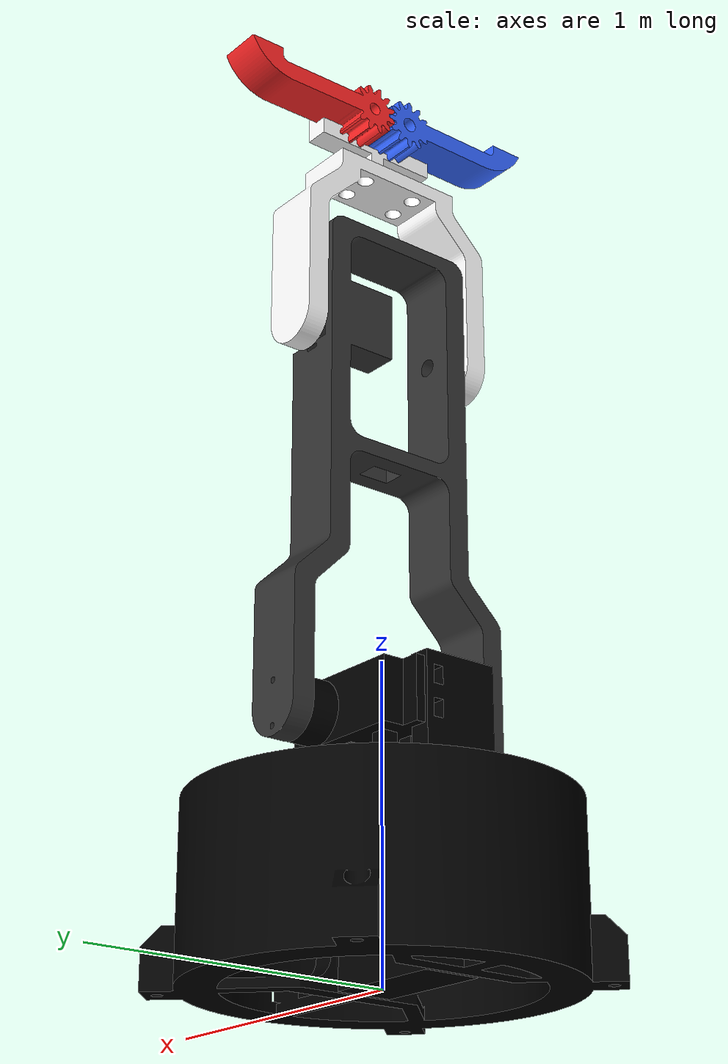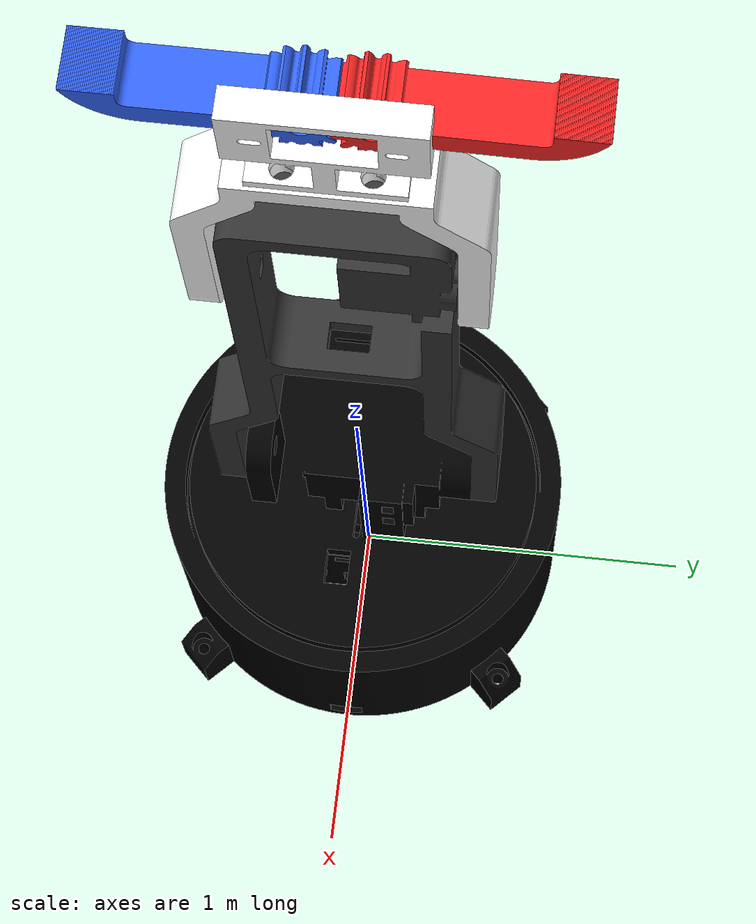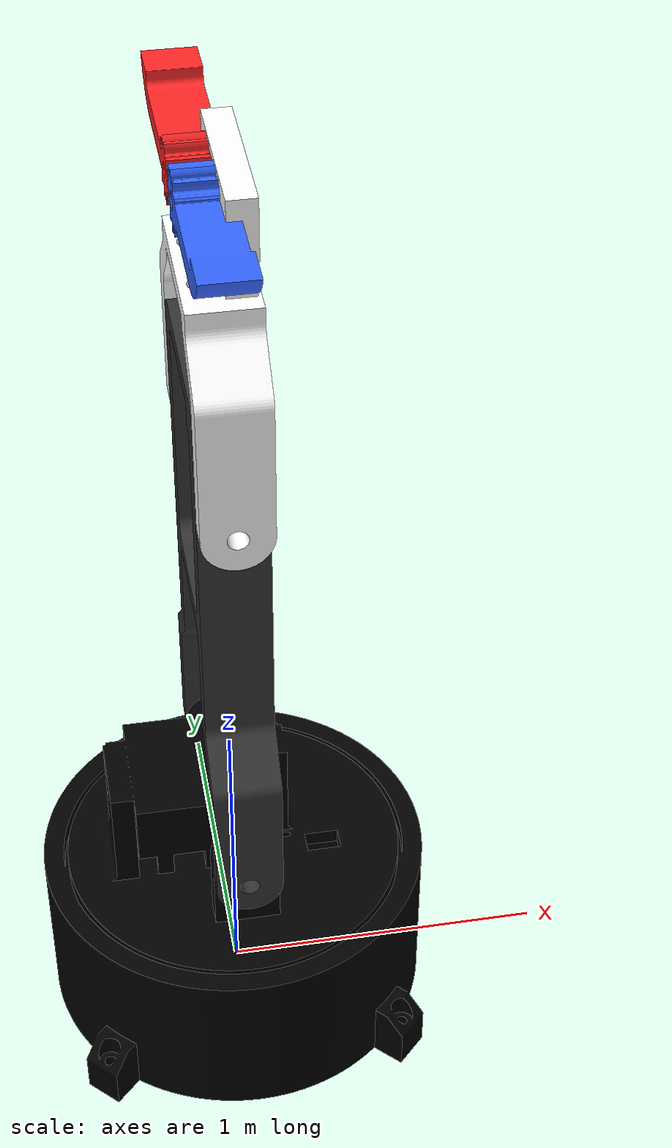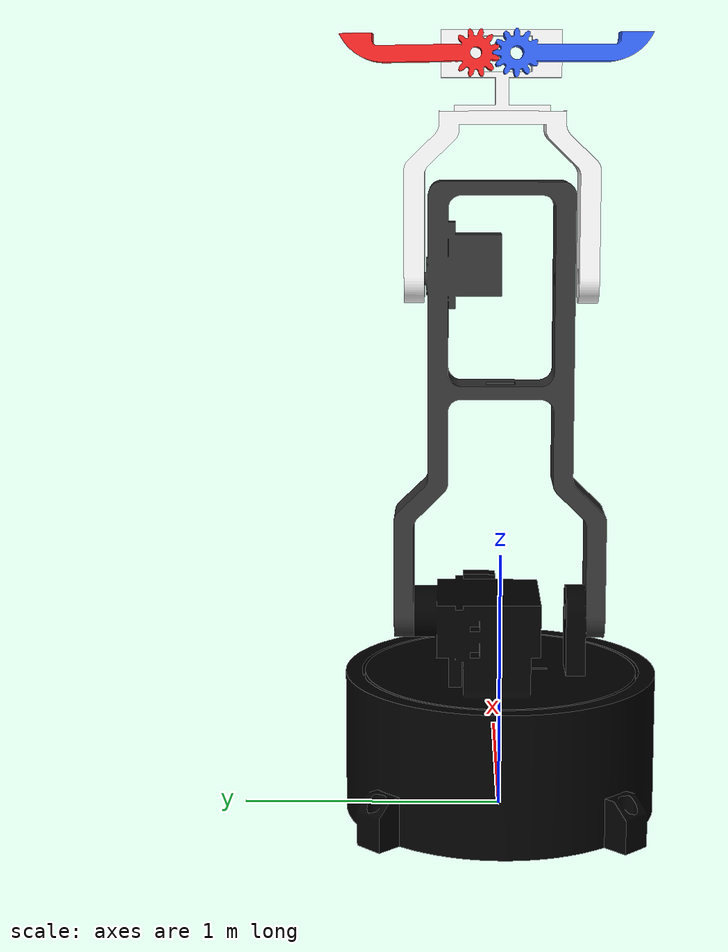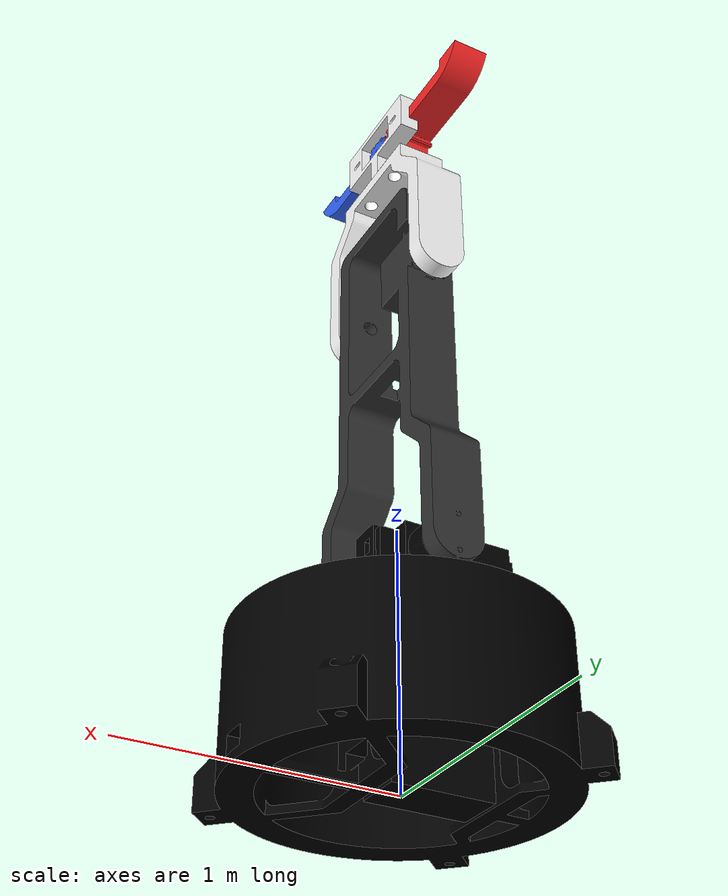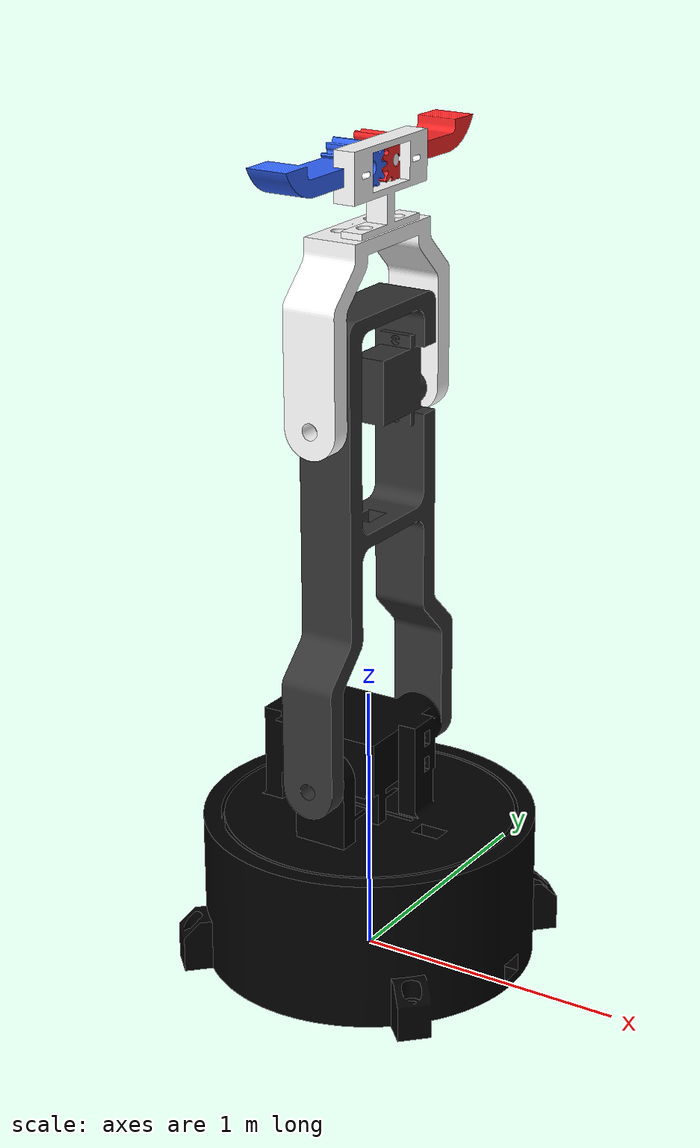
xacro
<?xml version="1.0"?>
<robot xmlns:xacro="https://www.ros.org/wiki/xacro" name="pibot">

    <xacro:include filename="$(find robot_description)/urdf/robot_ros2_control.xacro"/>

    <xacro:property name="effort_big_servo" value="1.32" />
    <xacro:property name="velocity_big_servo" value="6.16" />
    <xacro:property name="PI" value="3.14159" />

    <link name="world"/>

    <link name="base_link">
        <visual>
            <origin rpy="0 0 0" xyz="0 0 0"/>
                <geometry>
                    <mesh filename="package://robot_description/meshes/Base_Bottom.stl" scale="0.01 0.01 0.01"/>
                </geometry>
            <material name="gray">
                <color rgba="0.0 0.0 0.0 1.0"/>
            </material>
        </visual>
        <inertial>
            <mass value="0.312"/>
            <inertia ixx="0.0008" ixy="0.0" ixz="0.0" iyy="0.0008" iyz="0.0" izz="0.0008"/>
        </inertial>
    </link>

    <joint name="virtual_joint" type="fixed">
        <parent link="world"/>
        <child link="base_link"/>
        <origin rpy="0 0 0" xyz="0 0 0"/>
    </joint>

    <link name="base_plate">
        <visual>
            <origin rpy="0 0 0" xyz="0 0 0"/>
            <geometry>
                <mesh filename="package://robot_description/meshes/Base_Plate_with_Servo.stl" scale="0.01 0.01 0.01"/>
            </geometry>
            <material name="black">
                <color rgba="0.0 0.0 0.0 1.0"/>
            </material>
        </visual>
        <inertial>
            <mass value="0.135"/>
            <inertia ixx="0.0004" ixy="0.0" ixz="0.0" iyy="0.0004" iyz="0.0" izz="0.0004"/>
        </inertial>
    </link>

    <joint name="joint_1" type="revolute">
        <parent link="base_link"/>
        <child link="base_plate"/>
        <axis xyz="0 0 1"/>
        <origin rpy="0 0 0" xyz="0 0 0.5"/>
        <limit lower="-${PI/2}" upper="${PI/2}" effort="${effort_big_servo}" velocity="${velocity_big_servo}"/>
    </joint>

    <link name="first_arm">
        <visual>
            <origin rpy="0 ${-PI/2} 0" xyz="0.1 -0.1 -0.33"/>
            <geometry>
                <mesh filename="package://robot_description/meshes/Joint_1_with_Servo.stl" scale="0.01 0.01 0.01"/>
            </geometry>
            <material name="dark_gray">
                <color rgba="0.2 0.2 0.2 1.0"/>
            </material>
        </visual>
        <inertial>
            <mass value="0.070"/>
            <inertia ixx="0.0002" ixy="0.0" ixz="0.0" iyy="0.0002" iyz="0.0" izz="0.0002"/>
        </inertial>
    </link>

    <joint name="joint_2" type="revolute">
        <parent link="base_plate"/>
        <child link="first_arm"/>
        <axis xyz="0 0 1"/>
        <origin rpy="${PI/2} 0 ${PI}" xyz="0 0.335 0.28"/>
        <limit lower="-${PI/2}" upper="${PI/2}" effort="${effort_big_servo}" velocity="${velocity_big_servo}"/>
    </joint>

    <link name="second_arm">
        <visual>
            <origin rpy="0 -${PI/2} 0" xyz="0.1 -0.1 -0.33"/>
            <geometry>
                <mesh filename="package://robot_description/meshes/SecondArm.stl" scale="0.01 0.01 0.01"/>
            </geometry>
            <material name="white">
                <color rgba="1.0 1.0 1.0 1.0"/>
            </material>
        </visual>
        <inertial>
            <mass value="0.070"/>
            <inertia ixx="0.0002" ixy="0.0" ixz="0.0" iyy="0.0002" iyz="0.0" izz="0.0002"/>
        </inertial>
    </link>

    <joint name="joint_3" type="revolute">
        <parent link="first_arm"/>
        <child link="second_arm"/>
        <axis xyz="0 0 1"/>
        <origin rpy="0 0 0" xyz="0 1.3 0"/>
        <limit lower="-${PI/2}" upper="${PI/2}" effort="${effort_big_servo}" velocity="${velocity_big_servo}"/>
    </joint>

    <link name="gripper_base">
        <visual>
            <origin rpy="0 -${PI/2} ${PI}" xyz="-0.04 0.2 0.005"/>
            <geometry>
                <mesh filename="package://robot_description/meshes/GripperBase.stl" scale="0.01 0.01 0.01"/>
            </geometry>
            <material name="white">
                <color rgba="1.0 1.0 1.0 1.0"/>
            </material>
        </visual>
        <inertial>
            <mass value="0.070"/>
            <inertia ixx="0.0002" ixy="0.0" ixz="0.0" iyy="0.0002" iyz="0.0" izz="0.0002"/>
        </inertial>
    </link>

    <joint name="joint_4_fixed_gripper" type="fixed">
        <parent link="second_arm"/>
        <child link="gripper_base"/>
        <origin rpy="0 0 0" xyz="-0.05 0.625 -0.33"/>
    </joint>

    <link name="ee_link">
        <inertial>
            <mass value="0.001"/>
            <inertia ixx="1e-6" iyy="1e-6" izz="1e-6" ixy="0" ixz="0" iyz="0"/>
        </inertial>
    </link>

    <joint name="ee_fixed_joint" type="fixed">
        <parent link="gripper_base"/>
        <child link="ee_link"/>
        <!-- Mittelpunkt zwischen den Greiferbacken -->
        <origin xyz="0 0.64 0.03" rpy="0 0 0"/>
    </joint>

    <link name="gripper_right">
        <visual>
            <origin rpy="0 0 0" xyz="0 0 0"/>
            <geometry>
                <mesh filename="package://robot_description/meshes/GripperRightFinger.stl" scale="0.01 0.01 0.01"/>
            </geometry>
            <material name="blue">
                <color rgba="0.2 0.4 1.0 1.0"/>
            </material>
        </visual>
        <inertial>
            <mass value="0.070"/>
            <inertia ixx="0.0002" ixy="0.0" ixz="0.0" iyy="0.0002" iyz="0.0" izz="0.0002"/>
        </inertial>
    </link>

    <joint name="gripper" type="revolute">
        <parent link="gripper_base"/>
        <child link="gripper_right"/>
        <axis xyz="0 0 1"/>
        <origin rpy="0 ${PI/2} 0" xyz="0 0.2 -0.05"/>
        <limit lower="-${PI/2}" upper="${PI/2}" effort="${effort_big_servo}" velocity="${velocity_big_servo}"/>
    </joint>

    <link name="gripper_left">
        <visual>
            <origin rpy="0 0 ${196 * PI/180}" xyz="0 0 0"/>
            <geometry>
                <mesh filename="package://robot_description/meshes/GripperLeftFinger.stl" scale="0.01 0.01 0.01"/>
            </geometry>
            <material name="red">
                <color rgba="1.0 0.15 0.15 1.0"/>
            </material>
        </visual>
        <inertial>
            <mass value="0.070"/>
            <inertia ixx="0.0002" ixy="0.0" ixz="0.0" iyy="0.0002" iyz="0.0" izz="0.0002"/>
        </inertial>
    </link>

    <joint name="gripper2" type="revolute">
        <parent link="gripper_base"/>
        <child link="gripper_left"/>
        <axis xyz="0 0 1"/>
        <origin rpy="0 ${PI/2} 0" xyz="0 0.2 0.1"/>
        <limit lower="-${PI/2}" upper="${PI/2}" effort="${effort_big_servo}" velocity="${velocity_big_servo}"/>
        <mimic joint="gripper" multiplier="-1" offset="0"/>
    </joint>
</robot>
